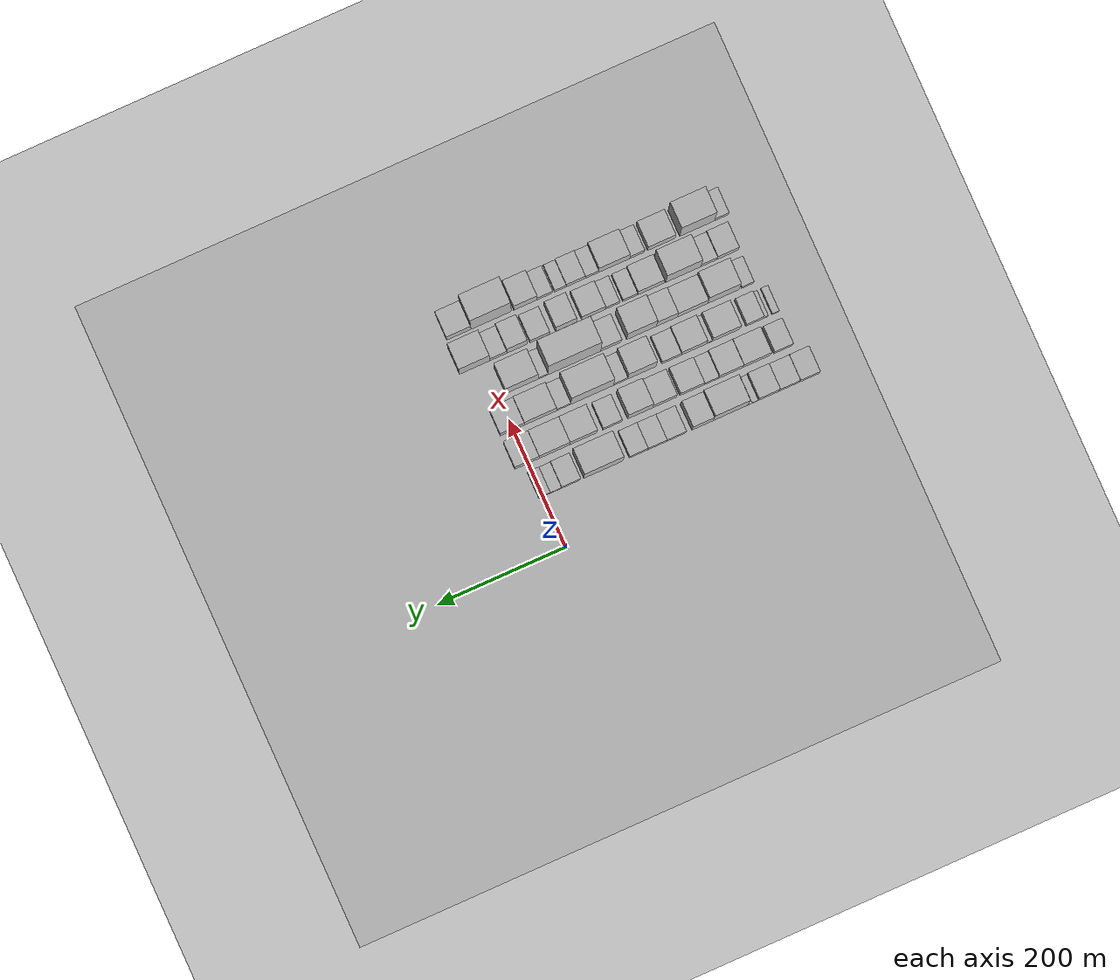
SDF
<sdf version="1.6">
 <world name="default">
  <include><name>ground_plane_1</name><uri>model://HANNAS_ground_plane</uri></include>
  <include>
   <name>ground_plane_2</name>
   <uri>model://HANNAS_ground_plane</uri>
   <pose>100 0 0  0 0 0</pose>
  </include>
  <model name="building_12">
   <static>1</static>
   <pose>100.0000 -415.4937 0 0.000000 0.000000 0.000000</pose>
   <link name="link">
    <pose>0 0 28.50 0 0 0</pose>
    <collision name="collision"><geometry><box><size>40.0000 30.6795 57.0000</size></box></geometry></collision>
    <visual name="visual">
     <cast_shadows>0</cast_shadows>
     <geometry><box><size>40.0000 30.6795 57.0000</size></box></geometry>
     <material>
      <script>
       <uri>model://HANNAS_wall/materials/scripts</uri>
       <uri>model://HANNAS_wall/materials/textures</uri>
       <name>vrc/HANNAS_wall</name>
      </script>
     </material>
    </visual>
   </link>
  </model>
  <model name="building_13">
   <static>1</static>
   <pose>100.0000 -384.3324 0 0.000000 0.000000 0.000000</pose>
   <link name="link">
    <pose>0 0 27.00 0 0 0</pose>
    <collision name="collision"><geometry><box><size>40.0000 31.6431 54.0000</size></box></geometry></collision>
    <visual name="visual">
     <cast_shadows>0</cast_shadows>
     <geometry><box><size>40.0000 31.6431 54.0000</size></box></geometry>
     <material>
      <script>
       <uri>model://HANNAS_wall/materials/scripts</uri>
       <uri>model://HANNAS_wall/materials/textures</uri>
       <name>vrc/HANNAS_wall</name>
      </script>
     </material>
    </visual>
   </link>
  </model>
  <model name="building_14">
   <static>1</static>
   <pose>100.0000 -352.0110 0 0.000000 0.000000 0.000000</pose>
   <link name="link">
    <pose>0 0 31.50 0 0 0</pose>
    <collision name="collision"><geometry><box><size>40.0000 32.9997 63.0000</size></box></geometry></collision>
    <visual name="visual">
     <cast_shadows>0</cast_shadows>
     <geometry><box><size>40.0000 32.9997 63.0000</size></box></geometry>
     <material>
      <script>
       <uri>model://HANNAS_wall/materials/scripts</uri>
       <uri>model://HANNAS_wall/materials/textures</uri>
       <name>vrc/HANNAS_wall</name>
      </script>
     </material>
    </visual>
   </link>
  </model>
  <model name="building_15">
   <static>1</static>
   <pose>100.0000 -330.5286 0 0.000000 0.000000 0.000000</pose>
   <link name="link">
    <pose>0 0 10.50 0 0 0</pose>
    <collision name="collision"><geometry><box><size>40.0000 9.9651 21.0000</size></box></geometry></collision>
    <visual name="visual">
     <cast_shadows>0</cast_shadows>
     <geometry><box><size>40.0000 9.9651 21.0000</size></box></geometry>
     <material>
      <script>
       <uri>model://HANNAS_wall/materials/scripts</uri>
       <uri>model://HANNAS_wall/materials/textures</uri>
       <name>vrc/HANNAS_wall</name>
      </script>
     </material>
    </visual>
   </link>
  </model>
  <model name="building_16">
   <static>1</static>
   <pose>100.0000 -322.3145 0 0.000000 0.000000 0.000000</pose>
   <link name="link">
    <pose>0 0 7.50 0 0 0</pose>
    <collision name="collision"><geometry><box><size>40.0000 6.4632 15.0000</size></box></geometry></collision>
    <visual name="visual">
     <cast_shadows>0</cast_shadows>
     <geometry><box><size>40.0000 6.4632 15.0000</size></box></geometry>
     <material>
      <script>
       <uri>model://HANNAS_wall/materials/scripts</uri>
       <uri>model://HANNAS_wall/materials/textures</uri>
       <name>vrc/HANNAS_wall</name>
      </script>
     </material>
    </visual>
   </link>
  </model>
  <model name="building_17">
   <static>1</static>
   <pose>100.0000 -292.0841 0 0.000000 0.000000 0.000000</pose>
   <link name="link">
    <pose>0 0 75.00 0 0 0</pose>
    <collision name="collision"><geometry><box><size>40.0000 53.9976 150.0000</size></box></geometry></collision>
    <visual name="visual">
     <cast_shadows>0</cast_shadows>
     <geometry><box><size>40.0000 53.9976 150.0000</size></box></geometry>
     <material>
      <script>
       <uri>model://HANNAS_wall/materials/scripts</uri>
       <uri>model://HANNAS_wall/materials/textures</uri>
       <name>vrc/HANNAS_wall</name>
      </script>
     </material>
    </visual>
   </link>
  </model>
  <model name="building_18">
   <static>1</static>
   <pose>100.0000 -248.5190 0 0.000000 0.000000 0.000000</pose>
   <link name="link">
    <pose>0 0 52.50 0 0 0</pose>
    <collision name="collision"><geometry><box><size>40.0000 33.1326 105.0000</size></box></geometry></collision>
    <visual name="visual">
     <cast_shadows>0</cast_shadows>
     <geometry><box><size>40.0000 33.1326 105.0000</size></box></geometry>
     <material>
      <script>
       <uri>model://HANNAS_wall/materials/scripts</uri>
       <uri>model://HANNAS_wall/materials/textures</uri>
       <name>vrc/HANNAS_wall</name>
      </script>
     </material>
    </visual>
   </link>
  </model>
  <model name="building_19">
   <static>1</static>
   <pose>100.0000 -207.8662 0 0.000000 0.000000 0.000000</pose>
   <link name="link">
    <pose>0 0 25.50 0 0 0</pose>
    <collision name="collision"><geometry><box><size>40.0000 30.1730 51.0000</size></box></geometry></collision>
    <visual name="visual">
     <cast_shadows>0</cast_shadows>
     <geometry><box><size>40.0000 30.1730 51.0000</size></box></geometry>
     <material>
      <script>
       <uri>model://HANNAS_wall/materials/scripts</uri>
       <uri>model://HANNAS_wall/materials/textures</uri>
       <name>vrc/HANNAS_wall</name>
      </script>
     </material>
    </visual>
   </link>
  </model>
  <model name="building_20">
   <static>1</static>
   <pose>100.0000 -178.0327 0 0.000000 0.000000 0.000000</pose>
   <link name="link">
    <pose>0 0 27.00 0 0 0</pose>
    <collision name="collision"><geometry><box><size>40.0000 29.4939 54.0000</size></box></geometry></collision>
    <visual name="visual">
     <cast_shadows>0</cast_shadows>
     <geometry><box><size>40.0000 29.4939 54.0000</size></box></geometry>
     <material>
      <script>
       <uri>model://HANNAS_wall/materials/scripts</uri>
       <uri>model://HANNAS_wall/materials/textures</uri>
       <name>vrc/HANNAS_wall</name>
      </script>
     </material>
    </visual>
   </link>
  </model>
  <model name="building_21">
   <static>1</static>
   <pose>100.0000 -148.8522 0 0.000000 0.000000 0.000000</pose>
   <link name="link">
    <pose>0 0 28.50 0 0 0</pose>
    <collision name="collision"><geometry><box><size>40.0000 28.8671 57.0000</size></box></geometry></collision>
    <visual name="visual">
     <cast_shadows>0</cast_shadows>
     <geometry><box><size>40.0000 28.8671 57.0000</size></box></geometry>
     <material>
      <script>
       <uri>model://HANNAS_wall/materials/scripts</uri>
       <uri>model://HANNAS_wall/materials/textures</uri>
       <name>vrc/HANNAS_wall</name>
      </script>
     </material>
    </visual>
   </link>
  </model>
  <model name="building_22">
   <static>1</static>
   <pose>100.0000 -93.9196 0 0.000000 0.000000 0.000000</pose>
   <link name="link">
    <pose>0 0 78.00 0 0 0</pose>
    <collision name="collision"><geometry><box><size>40.0000 60.9980 156.0000</size></box></geometry></collision>
    <visual name="visual">
     <cast_shadows>0</cast_shadows>
     <geometry><box><size>40.0000 60.9980 156.0000</size></box></geometry>
     <material>
      <script>
       <uri>model://HANNAS_wall/materials/scripts</uri>
       <uri>model://HANNAS_wall/materials/textures</uri>
       <name>vrc/HANNAS_wall</name>
      </script>
     </material>
    </visual>
   </link>
  </model>
  <model name="building_23">
   <static>1</static>
   <pose>100.0000 -43.6051 0 0.000000 0.000000 0.000000</pose>
   <link name="link">
    <pose>0 0 25.50 0 0 0</pose>
    <collision name="collision"><geometry><box><size>40.0000 29.6312 51.0000</size></box></geometry></collision>
    <visual name="visual">
     <cast_shadows>0</cast_shadows>
     <geometry><box><size>40.0000 29.6312 51.0000</size></box></geometry>
     <material>
      <script>
       <uri>model://HANNAS_wall/materials/scripts</uri>
       <uri>model://HANNAS_wall/materials/textures</uri>
       <name>vrc/HANNAS_wall</name>
      </script>
     </material>
    </visual>
   </link>
  </model>
  <model name="building_24">
   <static>1</static>
   <pose>100.0000 -19.9299 0 0.000000 0.000000 0.000000</pose>
   <link name="link">
    <pose>0 0 15.00 0 0 0</pose>
    <collision name="collision"><geometry><box><size>40.0000 17.7191 30.0000</size></box></geometry></collision>
    <visual name="visual">
     <cast_shadows>0</cast_shadows>
     <geometry><box><size>40.0000 17.7191 30.0000</size></box></geometry>
     <material>
      <script>
       <uri>model://HANNAS_wall/materials/scripts</uri>
       <uri>model://HANNAS_wall/materials/textures</uri>
       <name>vrc/HANNAS_wall</name>
      </script>
     </material>
    </visual>
   </link>
  </model>
  <model name="building_25">
   <static>1</static>
   <pose>100.0000 -2.0524 0 0.000000 0.000000 0.000000</pose>
   <link name="link">
    <pose>0 0 18.00 0 0 0</pose>
    <collision name="collision"><geometry><box><size>40.0000 18.0360 36.0000</size></box></geometry></collision>
    <visual name="visual">
     <cast_shadows>0</cast_shadows>
     <geometry><box><size>40.0000 18.0360 36.0000</size></box></geometry>
     <material>
      <script>
       <uri>model://HANNAS_wall/materials/scripts</uri>
       <uri>model://HANNAS_wall/materials/textures</uri>
       <name>vrc/HANNAS_wall</name>
      </script>
     </material>
    </visual>
   </link>
  </model>
  <model name="building_62">
   <static>1</static>
   <pose>152.0000 -397.9090 0 0.000000 0.000000 0.000000</pose>
   <link name="link">
    <pose>0 0 25.50 0 0 0</pose>
    <collision name="collision"><geometry><box><size>40.0000 29.2951 51.0000</size></box></geometry></collision>
    <visual name="visual">
     <cast_shadows>0</cast_shadows>
     <geometry><box><size>40.0000 29.2951 51.0000</size></box></geometry>
     <material>
      <script>
       <uri>model://HANNAS_wall/materials/scripts</uri>
       <uri>model://HANNAS_wall/materials/textures</uri>
       <name>vrc/HANNAS_wall</name>
      </script>
     </material>
    </visual>
   </link>
  </model>
  <model name="building_63">
   <static>1</static>
   <pose>152.0000 -356.6444 0 0.000000 0.000000 0.000000</pose>
   <link name="link">
    <pose>0 0 37.50 0 0 0</pose>
    <collision name="collision"><geometry><box><size>40.0000 43.2341 75.0000</size></box></geometry></collision>
    <visual name="visual">
     <cast_shadows>0</cast_shadows>
     <geometry><box><size>40.0000 43.2341 75.0000</size></box></geometry>
     <material>
      <script>
       <uri>model://HANNAS_wall/materials/scripts</uri>
       <uri>model://HANNAS_wall/materials/textures</uri>
       <name>vrc/HANNAS_wall</name>
      </script>
     </material>
    </visual>
   </link>
  </model>
  <model name="building_64">
   <static>1</static>
   <pose>152.0000 -316.1906 0 0.000000 0.000000 0.000000</pose>
   <link name="link">
    <pose>0 0 34.50 0 0 0</pose>
    <collision name="collision"><geometry><box><size>40.0000 37.6734 69.0000</size></box></geometry></collision>
    <visual name="visual">
     <cast_shadows>0</cast_shadows>
     <geometry><box><size>40.0000 37.6734 69.0000</size></box></geometry>
     <material>
      <script>
       <uri>model://HANNAS_wall/materials/scripts</uri>
       <uri>model://HANNAS_wall/materials/textures</uri>
       <name>vrc/HANNAS_wall</name>
      </script>
     </material>
    </visual>
   </link>
  </model>
  <model name="building_65">
   <static>1</static>
   <pose>152.0000 -285.7049 0 0.000000 0.000000 0.000000</pose>
   <link name="link">
    <pose>0 0 22.50 0 0 0</pose>
    <collision name="collision"><geometry><box><size>40.0000 23.2981 45.0000</size></box></geometry></collision>
    <visual name="visual">
     <cast_shadows>0</cast_shadows>
     <geometry><box><size>40.0000 23.2981 45.0000</size></box></geometry>
     <material>
      <script>
       <uri>model://HANNAS_wall/materials/scripts</uri>
       <uri>model://HANNAS_wall/materials/textures</uri>
       <name>vrc/HANNAS_wall</name>
      </script>
     </material>
    </visual>
   </link>
  </model>
  <model name="building_66">
   <static>1</static>
   <pose>152.0000 -255.3257 0 0.000000 0.000000 0.000000</pose>
   <link name="link">
    <pose>0 0 33.00 0 0 0</pose>
    <collision name="collision"><geometry><box><size>40.0000 37.4603 66.0000</size></box></geometry></collision>
    <visual name="visual">
     <cast_shadows>0</cast_shadows>
     <geometry><box><size>40.0000 37.4603 66.0000</size></box></geometry>
     <material>
      <script>
       <uri>model://HANNAS_wall/materials/scripts</uri>
       <uri>model://HANNAS_wall/materials/textures</uri>
       <name>vrc/HANNAS_wall</name>
      </script>
     </material>
    </visual>
   </link>
  </model>
  <model name="building_67">
   <static>1</static>
   <pose>152.0000 -212.8691 0 0.000000 0.000000 0.000000</pose>
   <link name="link">
    <pose>0 0 36.00 0 0 0</pose>
    <collision name="collision"><geometry><box><size>40.0000 37.4528 72.0000</size></box></geometry></collision>
    <visual name="visual">
     <cast_shadows>0</cast_shadows>
     <geometry><box><size>40.0000 37.4528 72.0000</size></box></geometry>
     <material>
      <script>
       <uri>model://HANNAS_wall/materials/scripts</uri>
       <uri>model://HANNAS_wall/materials/textures</uri>
       <name>vrc/HANNAS_wall</name>
      </script>
     </material>
    </visual>
   </link>
  </model>
  <model name="building_68">
   <static>1</static>
   <pose>152.0000 -174.6141 0 0.000000 0.000000 0.000000</pose>
   <link name="link">
    <pose>0 0 60.00 0 0 0</pose>
    <collision name="collision"><geometry><box><size>40.0000 39.0573 120.0000</size></box></geometry></collision>
    <visual name="visual">
     <cast_shadows>0</cast_shadows>
     <geometry><box><size>40.0000 39.0573 120.0000</size></box></geometry>
     <material>
      <script>
       <uri>model://HANNAS_wall/materials/scripts</uri>
       <uri>model://HANNAS_wall/materials/textures</uri>
       <name>vrc/HANNAS_wall</name>
      </script>
     </material>
    </visual>
   </link>
  </model>
  <model name="building_69">
   <static>1</static>
   <pose>152.0000 -131.2801 0 0.000000 0.000000 0.000000</pose>
   <link name="link">
    <pose>0 0 28.50 0 0 0</pose>
    <collision name="collision"><geometry><box><size>40.0000 29.6106 57.0000</size></box></geometry></collision>
    <visual name="visual">
     <cast_shadows>0</cast_shadows>
     <geometry><box><size>40.0000 29.6106 57.0000</size></box></geometry>
     <material>
      <script>
       <uri>model://HANNAS_wall/materials/scripts</uri>
       <uri>model://HANNAS_wall/materials/textures</uri>
       <name>vrc/HANNAS_wall</name>
      </script>
     </material>
    </visual>
   </link>
  </model>
  <model name="building_70">
   <static>1</static>
   <pose>152.0000 -86.2488 0 0.000000 0.000000 0.000000</pose>
   <link name="link">
    <pose>0 0 42.00 0 0 0</pose>
    <collision name="collision"><geometry><box><size>40.0000 42.4521 84.0000</size></box></geometry></collision>
    <visual name="visual">
     <cast_shadows>0</cast_shadows>
     <geometry><box><size>40.0000 42.4521 84.0000</size></box></geometry>
     <material>
      <script>
       <uri>model://HANNAS_wall/materials/scripts</uri>
       <uri>model://HANNAS_wall/materials/textures</uri>
       <name>vrc/HANNAS_wall</name>
      </script>
     </material>
    </visual>
   </link>
  </model>
  <model name="building_71">
   <static>1</static>
   <pose>152.0000 -41.0210 0 0.000000 0.000000 0.000000</pose>
   <link name="link">
    <pose>0 0 42.00 0 0 0</pose>
    <collision name="collision"><geometry><box><size>40.0000 48.0034 84.0000</size></box></geometry></collision>
    <visual name="visual">
     <cast_shadows>0</cast_shadows>
     <geometry><box><size>40.0000 48.0034 84.0000</size></box></geometry>
     <material>
      <script>
       <uri>model://HANNAS_wall/materials/scripts</uri>
       <uri>model://HANNAS_wall/materials/textures</uri>
       <name>vrc/HANNAS_wall</name>
      </script>
     </material>
    </visual>
   </link>
  </model>
  <model name="building_72">
   <static>1</static>
   <pose>152.0000 2.0179 0 0.000000 0.000000 0.000000</pose>
   <link name="link">
    <pose>0 0 37.50 0 0 0</pose>
    <collision name="collision"><geometry><box><size>40.0000 38.0745 75.0000</size></box></geometry></collision>
    <visual name="visual">
     <cast_shadows>0</cast_shadows>
     <geometry><box><size>40.0000 38.0745 75.0000</size></box></geometry>
     <material>
      <script>
       <uri>model://HANNAS_wall/materials/scripts</uri>
       <uri>model://HANNAS_wall/materials/textures</uri>
       <name>vrc/HANNAS_wall</name>
      </script>
     </material>
    </visual>
   </link>
  </model>
  <model name="building_115">
   <static>1</static>
   <pose>204.0000 -409.1559 0 0.000000 0.000000 0.000000</pose>
   <link name="link">
    <pose>0 0 12.00 0 0 0</pose>
    <collision name="collision"><geometry><box><size>40.0000 10.6407 24.0000</size></box></geometry></collision>
    <visual name="visual">
     <cast_shadows>0</cast_shadows>
     <geometry><box><size>40.0000 10.6407 24.0000</size></box></geometry>
     <material>
      <script>
       <uri>model://HANNAS_wall/materials/scripts</uri>
       <uri>model://HANNAS_wall/materials/textures</uri>
       <name>vrc/HANNAS_wall</name>
      </script>
     </material>
    </visual>
   </link>
  </model>
  <model name="building_116">
   <static>1</static>
   <pose>204.0000 -394.1683 0 0.000000 0.000000 0.000000</pose>
   <link name="link">
    <pose>0 0 9.00 0 0 0</pose>
    <collision name="collision"><geometry><box><size>40.0000 7.3345 18.0000</size></box></geometry></collision>
    <visual name="visual">
     <cast_shadows>0</cast_shadows>
     <geometry><box><size>40.0000 7.3345 18.0000</size></box></geometry>
     <material>
      <script>
       <uri>model://HANNAS_wall/materials/scripts</uri>
       <uri>model://HANNAS_wall/materials/textures</uri>
       <name>vrc/HANNAS_wall</name>
      </script>
     </material>
    </visual>
   </link>
  </model>
  <model name="building_117">
   <static>1</static>
   <pose>204.0000 -376.8056 0 0.000000 0.000000 0.000000</pose>
   <link name="link">
    <pose>0 0 25.50 0 0 0</pose>
    <collision name="collision"><geometry><box><size>40.0000 27.3908 51.0000</size></box></geometry></collision>
    <visual name="visual">
     <cast_shadows>0</cast_shadows>
     <geometry><box><size>40.0000 27.3908 51.0000</size></box></geometry>
     <material>
      <script>
       <uri>model://HANNAS_wall/materials/scripts</uri>
       <uri>model://HANNAS_wall/materials/textures</uri>
       <name>vrc/HANNAS_wall</name>
      </script>
     </material>
    </visual>
   </link>
  </model>
  <model name="building_118">
   <static>1</static>
   <pose>204.0000 -332.3905 0 0.000000 0.000000 0.000000</pose>
   <link name="link">
    <pose>0 0 39.00 0 0 0</pose>
    <collision name="collision"><geometry><box><size>40.0000 43.4395 78.0000</size></box></geometry></collision>
    <visual name="visual">
     <cast_shadows>0</cast_shadows>
     <geometry><box><size>40.0000 43.4395 78.0000</size></box></geometry>
     <material>
      <script>
       <uri>model://HANNAS_wall/materials/scripts</uri>
       <uri>model://HANNAS_wall/materials/textures</uri>
       <name>vrc/HANNAS_wall</name>
      </script>
     </material>
    </visual>
   </link>
  </model>
  <model name="building_119">
   <static>1</static>
   <pose>204.0000 -306.2946 0 0.000000 0.000000 0.000000</pose>
   <link name="link">
    <pose>0 0 10.50 0 0 0</pose>
    <collision name="collision"><geometry><box><size>40.0000 8.7524 21.0000</size></box></geometry></collision>
    <visual name="visual">
     <cast_shadows>0</cast_shadows>
     <geometry><box><size>40.0000 8.7524 21.0000</size></box></geometry>
     <material>
      <script>
       <uri>model://HANNAS_wall/materials/scripts</uri>
       <uri>model://HANNAS_wall/materials/textures</uri>
       <name>vrc/HANNAS_wall</name>
      </script>
     </material>
    </visual>
   </link>
  </model>
  <model name="building_120">
   <static>1</static>
   <pose>204.0000 -281.8661 0 0.000000 0.000000 0.000000</pose>
   <link name="link">
    <pose>0 0 39.00 0 0 0</pose>
    <collision name="collision"><geometry><box><size>40.0000 40.1045 78.0000</size></box></geometry></collision>
    <visual name="visual">
     <cast_shadows>0</cast_shadows>
     <geometry><box><size>40.0000 40.1045 78.0000</size></box></geometry>
     <material>
      <script>
       <uri>model://HANNAS_wall/materials/scripts</uri>
       <uri>model://HANNAS_wall/materials/textures</uri>
       <name>vrc/HANNAS_wall</name>
      </script>
     </material>
    </visual>
   </link>
  </model>
  <model name="building_121">
   <static>1</static>
   <pose>204.0000 -246.8113 0 0.000000 0.000000 0.000000</pose>
   <link name="link">
    <pose>0 0 25.50 0 0 0</pose>
    <collision name="collision"><geometry><box><size>40.0000 30.0051 51.0000</size></box></geometry></collision>
    <visual name="visual">
     <cast_shadows>0</cast_shadows>
     <geometry><box><size>40.0000 30.0051 51.0000</size></box></geometry>
     <material>
      <script>
       <uri>model://HANNAS_wall/materials/scripts</uri>
       <uri>model://HANNAS_wall/materials/textures</uri>
       <name>vrc/HANNAS_wall</name>
      </script>
     </material>
    </visual>
   </link>
  </model>
  <model name="building_122">
   <static>1</static>
   <pose>204.0000 -200.6649 0 0.000000 0.000000 0.000000</pose>
   <link name="link">
    <pose>0 0 66.00 0 0 0</pose>
    <collision name="collision"><geometry><box><size>40.0000 44.2879 132.0000</size></box></geometry></collision>
    <visual name="visual">
     <cast_shadows>0</cast_shadows>
     <geometry><box><size>40.0000 44.2879 132.0000</size></box></geometry>
     <material>
      <script>
       <uri>model://HANNAS_wall/materials/scripts</uri>
       <uri>model://HANNAS_wall/materials/textures</uri>
       <name>vrc/HANNAS_wall</name>
      </script>
     </material>
    </visual>
   </link>
  </model>
  <model name="building_123">
   <static>1</static>
   <pose>204.0000 -167.4529 0 0.000000 0.000000 0.000000</pose>
   <link name="link">
    <pose>0 0 21.00 0 0 0</pose>
    <collision name="collision"><geometry><box><size>40.0000 22.1360 42.0000</size></box></geometry></collision>
    <visual name="visual">
     <cast_shadows>0</cast_shadows>
     <geometry><box><size>40.0000 22.1360 42.0000</size></box></geometry>
     <material>
      <script>
       <uri>model://HANNAS_wall/materials/scripts</uri>
       <uri>model://HANNAS_wall/materials/textures</uri>
       <name>vrc/HANNAS_wall</name>
      </script>
     </material>
    </visual>
   </link>
  </model>
  <model name="building_124">
   <static>1</static>
   <pose>204.0000 -123.0507 0 0.000000 0.000000 0.000000</pose>
   <link name="link">
    <pose>0 0 87.00 0 0 0</pose>
    <collision name="collision"><geometry><box><size>40.0000 66.6684 174.0000</size></box></geometry></collision>
    <visual name="visual">
     <cast_shadows>0</cast_shadows>
     <geometry><box><size>40.0000 66.6684 174.0000</size></box></geometry>
     <material>
      <script>
       <uri>model://HANNAS_wall/materials/scripts</uri>
       <uri>model://HANNAS_wall/materials/textures</uri>
       <name>vrc/HANNAS_wall</name>
      </script>
     </material>
    </visual>
   </link>
  </model>
  <model name="building_125">
   <static>1</static>
   <pose>204.0000 -78.4507 0 0.000000 0.000000 0.000000</pose>
   <link name="link">
    <pose>0 0 19.50 0 0 0</pose>
    <collision name="collision"><geometry><box><size>40.0000 22.5318 39.0000</size></box></geometry></collision>
    <visual name="visual">
     <cast_shadows>0</cast_shadows>
     <geometry><box><size>40.0000 22.5318 39.0000</size></box></geometry>
     <material>
      <script>
       <uri>model://HANNAS_wall/materials/scripts</uri>
       <uri>model://HANNAS_wall/materials/textures</uri>
       <name>vrc/HANNAS_wall</name>
      </script>
     </material>
    </visual>
   </link>
  </model>
  <model name="building_126">
   <static>1</static>
   <pose>204.0000 -42.1700 0 0.000000 0.000000 0.000000</pose>
   <link name="link">
    <pose>0 0 43.50 0 0 0</pose>
    <collision name="collision"><geometry><box><size>40.0000 50.0296 87.0000</size></box></geometry></collision>
    <visual name="visual">
     <cast_shadows>0</cast_shadows>
     <geometry><box><size>40.0000 50.0296 87.0000</size></box></geometry>
     <material>
      <script>
       <uri>model://HANNAS_wall/materials/scripts</uri>
       <uri>model://HANNAS_wall/materials/textures</uri>
       <name>vrc/HANNAS_wall</name>
      </script>
     </material>
    </visual>
   </link>
  </model>
  <model name="building_127">
   <static>1</static>
   <pose>204.0000 1.7032 0 0.000000 0.000000 0.000000</pose>
   <link name="link">
    <pose>0 0 34.50 0 0 0</pose>
    <collision name="collision"><geometry><box><size>40.0000 37.7168 69.0000</size></box></geometry></collision>
    <visual name="visual">
     <cast_shadows>0</cast_shadows>
     <geometry><box><size>40.0000 37.7168 69.0000</size></box></geometry>
     <material>
      <script>
       <uri>model://HANNAS_wall/materials/scripts</uri>
       <uri>model://HANNAS_wall/materials/textures</uri>
       <name>vrc/HANNAS_wall</name>
      </script>
     </material>
    </visual>
   </link>
  </model>
  <model name="building_162">
   <static>1</static>
   <pose>256.0000 -388.8770 0 0.000000 0.000000 0.000000</pose>
   <link name="link">
    <pose>0 0 18.00 0 0 0</pose>
    <collision name="collision"><geometry><box><size>40.0000 18.8424 36.0000</size></box></geometry></collision>
    <visual name="visual">
     <cast_shadows>0</cast_shadows>
     <geometry><box><size>40.0000 18.8424 36.0000</size></box></geometry>
     <material>
      <script>
       <uri>model://HANNAS_wall/materials/scripts</uri>
       <uri>model://HANNAS_wall/materials/textures</uri>
       <name>vrc/HANNAS_wall</name>
      </script>
     </material>
    </visual>
   </link>
  </model>
  <model name="building_163">
   <static>1</static>
   <pose>256.0000 -351.0007 0 0.000000 0.000000 0.000000</pose>
   <link name="link">
    <pose>0 0 66.00 0 0 0</pose>
    <collision name="collision"><geometry><box><size>40.0000 48.9103 132.0000</size></box></geometry></collision>
    <visual name="visual">
     <cast_shadows>0</cast_shadows>
     <geometry><box><size>40.0000 48.9103 132.0000</size></box></geometry>
     <material>
      <script>
       <uri>model://HANNAS_wall/materials/scripts</uri>
       <uri>model://HANNAS_wall/materials/textures</uri>
       <name>vrc/HANNAS_wall</name>
      </script>
     </material>
    </visual>
   </link>
  </model>
  <model name="building_164">
   <static>1</static>
   <pose>256.0000 -302.8229 0 0.000000 0.000000 0.000000</pose>
   <link name="link">
    <pose>0 0 42.00 0 0 0</pose>
    <collision name="collision"><geometry><box><size>40.0000 47.4453 84.0000</size></box></geometry></collision>
    <visual name="visual">
     <cast_shadows>0</cast_shadows>
     <geometry><box><size>40.0000 47.4453 84.0000</size></box></geometry>
     <material>
      <script>
       <uri>model://HANNAS_wall/materials/scripts</uri>
       <uri>model://HANNAS_wall/materials/textures</uri>
       <name>vrc/HANNAS_wall</name>
      </script>
     </material>
    </visual>
   </link>
  </model>
  <model name="building_165">
   <static>1</static>
   <pose>256.0000 -262.8055 0 0.000000 0.000000 0.000000</pose>
   <link name="link">
    <pose>0 0 49.50 0 0 0</pose>
    <collision name="collision"><geometry><box><size>40.0000 32.5894 99.0000</size></box></geometry></collision>
    <visual name="visual">
     <cast_shadows>0</cast_shadows>
     <geometry><box><size>40.0000 32.5894 99.0000</size></box></geometry>
     <material>
      <script>
       <uri>model://HANNAS_wall/materials/scripts</uri>
       <uri>model://HANNAS_wall/materials/textures</uri>
       <name>vrc/HANNAS_wall</name>
      </script>
     </material>
    </visual>
   </link>
  </model>
  <model name="building_166">
   <static>1</static>
   <pose>256.0000 -223.2886 0 0.000000 0.000000 0.000000</pose>
   <link name="link">
    <pose>0 0 70.50 0 0 0</pose>
    <collision name="collision"><geometry><box><size>40.0000 46.4445 141.0000</size></box></geometry></collision>
    <visual name="visual">
     <cast_shadows>0</cast_shadows>
     <geometry><box><size>40.0000 46.4445 141.0000</size></box></geometry>
     <material>
      <script>
       <uri>model://HANNAS_wall/materials/scripts</uri>
       <uri>model://HANNAS_wall/materials/textures</uri>
       <name>vrc/HANNAS_wall</name>
      </script>
     </material>
    </visual>
   </link>
  </model>
  <model name="building_167">
   <static>1</static>
   <pose>256.0000 -175.7738 0 0.000000 0.000000 0.000000</pose>
   <link name="link">
    <pose>0 0 31.50 0 0 0</pose>
    <collision name="collision"><geometry><box><size>40.0000 32.5851 63.0000</size></box></geometry></collision>
    <visual name="visual">
     <cast_shadows>0</cast_shadows>
     <geometry><box><size>40.0000 32.5851 63.0000</size></box></geometry>
     <material>
      <script>
       <uri>model://HANNAS_wall/materials/scripts</uri>
       <uri>model://HANNAS_wall/materials/textures</uri>
       <name>vrc/HANNAS_wall</name>
      </script>
     </material>
    </visual>
   </link>
  </model>
  <model name="building_168">
   <static>1</static>
   <pose>256.0000 -118.4840 0 0.000000 0.000000 0.000000</pose>
   <link name="link">
    <pose>0 0 112.50 0 0 0</pose>
    <collision name="collision"><geometry><box><size>40.0000 81.9945 225.0000</size></box></geometry></collision>
    <visual name="visual">
     <cast_shadows>0</cast_shadows>
     <geometry><box><size>40.0000 81.9945 225.0000</size></box></geometry>
     <material>
      <script>
       <uri>model://HANNAS_wall/materials/scripts</uri>
       <uri>model://HANNAS_wall/materials/textures</uri>
       <name>vrc/HANNAS_wall</name>
      </script>
     </material>
    </visual>
   </link>
  </model>
  <model name="building_169">
   <static>1</static>
   <pose>256.0000 -69.5954 0 0.000000 0.000000 0.000000</pose>
   <link name="link">
    <pose>0 0 15.00 0 0 0</pose>
    <collision name="collision"><geometry><box><size>40.0000 15.7825 30.0000</size></box></geometry></collision>
    <visual name="visual">
     <cast_shadows>0</cast_shadows>
     <geometry><box><size>40.0000 15.7825 30.0000</size></box></geometry>
     <material>
      <script>
       <uri>model://HANNAS_wall/materials/scripts</uri>
       <uri>model://HANNAS_wall/materials/textures</uri>
       <name>vrc/HANNAS_wall</name>
      </script>
     </material>
    </visual>
   </link>
  </model>
  <model name="building_170">
   <static>1</static>
   <pose>256.0000 -36.2695 0 0.000000 0.000000 0.000000</pose>
   <link name="link">
    <pose>0 0 64.50 0 0 0</pose>
    <collision name="collision"><geometry><box><size>40.0000 50.8694 129.0000</size></box></geometry></collision>
    <visual name="visual">
     <cast_shadows>0</cast_shadows>
     <geometry><box><size>40.0000 50.8694 129.0000</size></box></geometry>
     <material>
      <script>
       <uri>model://HANNAS_wall/materials/scripts</uri>
       <uri>model://HANNAS_wall/materials/textures</uri>
       <name>vrc/HANNAS_wall</name>
      </script>
     </material>
    </visual>
   </link>
  </model>
  <model name="building_204">
   <static>1</static>
   <pose>308.0000 -381.2557 0 0.000000 0.000000 0.000000</pose>
   <link name="link">
    <pose>0 0 30.00 0 0 0</pose>
    <collision name="collision"><geometry><box><size>40.0000 33.1061 60.0000</size></box></geometry></collision>
    <visual name="visual">
     <cast_shadows>0</cast_shadows>
     <geometry><box><size>40.0000 33.1061 60.0000</size></box></geometry>
     <material>
      <script>
       <uri>model://HANNAS_wall/materials/scripts</uri>
       <uri>model://HANNAS_wall/materials/textures</uri>
       <name>vrc/HANNAS_wall</name>
      </script>
     </material>
    </visual>
   </link>
  </model>
  <model name="building_205">
   <static>1</static>
   <pose>308.0000 -351.8702 0 0.000000 0.000000 0.000000</pose>
   <link name="link">
    <pose>0 0 22.50 0 0 0</pose>
    <collision name="collision"><geometry><box><size>40.0000 25.6650 45.0000</size></box></geometry></collision>
    <visual name="visual">
     <cast_shadows>0</cast_shadows>
     <geometry><box><size>40.0000 25.6650 45.0000</size></box></geometry>
     <material>
      <script>
       <uri>model://HANNAS_wall/materials/scripts</uri>
       <uri>model://HANNAS_wall/materials/textures</uri>
       <name>vrc/HANNAS_wall</name>
      </script>
     </material>
    </visual>
   </link>
  </model>
  <model name="building_206">
   <static>1</static>
   <pose>308.0000 -311.7218 0 0.000000 0.000000 0.000000</pose>
   <link name="link">
    <pose>0 0 70.50 0 0 0</pose>
    <collision name="collision"><geometry><box><size>40.0000 54.6317 141.0000</size></box></geometry></collision>
    <visual name="visual">
     <cast_shadows>0</cast_shadows>
     <geometry><box><size>40.0000 54.6317 141.0000</size></box></geometry>
     <material>
      <script>
       <uri>model://HANNAS_wall/materials/scripts</uri>
       <uri>model://HANNAS_wall/materials/textures</uri>
       <name>vrc/HANNAS_wall</name>
      </script>
     </material>
    </visual>
   </link>
  </model>
  <model name="building_207">
   <static>1</static>
   <pose>308.0000 -260.8564 0 0.000000 0.000000 0.000000</pose>
   <link name="link">
    <pose>0 0 36.00 0 0 0</pose>
    <collision name="collision"><geometry><box><size>40.0000 41.0992 72.0000</size></box></geometry></collision>
    <visual name="visual">
     <cast_shadows>0</cast_shadows>
     <geometry><box><size>40.0000 41.0992 72.0000</size></box></geometry>
     <material>
      <script>
       <uri>model://HANNAS_wall/materials/scripts</uri>
       <uri>model://HANNAS_wall/materials/textures</uri>
       <name>vrc/HANNAS_wall</name>
      </script>
     </material>
    </visual>
   </link>
  </model>
  <model name="building_208">
   <static>1</static>
   <pose>308.0000 -228.7630 0 0.000000 0.000000 0.000000</pose>
   <link name="link">
    <pose>0 0 19.50 0 0 0</pose>
    <collision name="collision"><geometry><box><size>40.0000 23.0876 39.0000</size></box></geometry></collision>
    <visual name="visual">
     <cast_shadows>0</cast_shadows>
     <geometry><box><size>40.0000 23.0876 39.0000</size></box></geometry>
     <material>
      <script>
       <uri>model://HANNAS_wall/materials/scripts</uri>
       <uri>model://HANNAS_wall/materials/textures</uri>
       <name>vrc/HANNAS_wall</name>
      </script>
     </material>
    </visual>
   </link>
  </model>
  <model name="building_209">
   <static>1</static>
   <pose>308.0000 -201.0558 0 0.000000 0.000000 0.000000</pose>
   <link name="link">
    <pose>0 0 19.50 0 0 0</pose>
    <collision name="collision"><geometry><box><size>40.0000 22.3268 39.0000</size></box></geometry></collision>
    <visual name="visual">
     <cast_shadows>0</cast_shadows>
     <geometry><box><size>40.0000 22.3268 39.0000</size></box></geometry>
     <material>
      <script>
       <uri>model://HANNAS_wall/materials/scripts</uri>
       <uri>model://HANNAS_wall/materials/textures</uri>
       <name>vrc/HANNAS_wall</name>
      </script>
     </material>
    </visual>
   </link>
  </model>
  <model name="building_210">
   <static>1</static>
   <pose>308.0000 -171.3919 0 0.000000 0.000000 0.000000</pose>
   <link name="link">
    <pose>0 0 34.50 0 0 0</pose>
    <collision name="collision"><geometry><box><size>40.0000 37.0009 69.0000</size></box></geometry></collision>
    <visual name="visual">
     <cast_shadows>0</cast_shadows>
     <geometry><box><size>40.0000 37.0009 69.0000</size></box></geometry>
     <material>
      <script>
       <uri>model://HANNAS_wall/materials/scripts</uri>
       <uri>model://HANNAS_wall/materials/textures</uri>
       <name>vrc/HANNAS_wall</name>
      </script>
     </material>
    </visual>
   </link>
  </model>
  <model name="building_211">
   <static>1</static>
   <pose>308.0000 -128.5199 0 0.000000 0.000000 0.000000</pose>
   <link name="link">
    <pose>0 0 48.00 0 0 0</pose>
    <collision name="collision"><geometry><box><size>40.0000 32.7432 96.0000</size></box></geometry></collision>
    <visual name="visual">
     <cast_shadows>0</cast_shadows>
     <geometry><box><size>40.0000 32.7432 96.0000</size></box></geometry>
     <material>
      <script>
       <uri>model://HANNAS_wall/materials/scripts</uri>
       <uri>model://HANNAS_wall/materials/textures</uri>
       <name>vrc/HANNAS_wall</name>
      </script>
     </material>
    </visual>
   </link>
  </model>
  <model name="building_212">
   <static>1</static>
   <pose>308.0000 -87.6714 0 0.000000 0.000000 0.000000</pose>
   <link name="link">
    <pose>0 0 27.00 0 0 0</pose>
    <collision name="collision"><geometry><box><size>40.0000 30.9537 54.0000</size></box></geometry></collision>
    <visual name="visual">
     <cast_shadows>0</cast_shadows>
     <geometry><box><size>40.0000 30.9537 54.0000</size></box></geometry>
     <material>
      <script>
       <uri>model://HANNAS_wall/materials/scripts</uri>
       <uri>model://HANNAS_wall/materials/textures</uri>
       <name>vrc/HANNAS_wall</name>
      </script>
     </material>
    </visual>
   </link>
  </model>
  <model name="building_213">
   <static>1</static>
   <pose>308.0000 -52.2334 0 0.000000 0.000000 0.000000</pose>
   <link name="link">
    <pose>0 0 49.50 0 0 0</pose>
    <collision name="collision"><geometry><box><size>40.0000 31.9223 99.0000</size></box></geometry></collision>
    <visual name="visual">
     <cast_shadows>0</cast_shadows>
     <geometry><box><size>40.0000 31.9223 99.0000</size></box></geometry>
     <material>
      <script>
       <uri>model://HANNAS_wall/materials/scripts</uri>
       <uri>model://HANNAS_wall/materials/textures</uri>
       <name>vrc/HANNAS_wall</name>
      </script>
     </material>
    </visual>
   </link>
  </model>
  <model name="building_214">
   <static>1</static>
   <pose>308.0000 -22.9744 0 0.000000 0.000000 0.000000</pose>
   <link name="link">
    <pose>0 0 25.50 0 0 0</pose>
    <collision name="collision"><geometry><box><size>40.0000 26.5957 51.0000</size></box></geometry></collision>
    <visual name="visual">
     <cast_shadows>0</cast_shadows>
     <geometry><box><size>40.0000 26.5957 51.0000</size></box></geometry>
     <material>
      <script>
       <uri>model://HANNAS_wall/materials/scripts</uri>
       <uri>model://HANNAS_wall/materials/textures</uri>
       <name>vrc/HANNAS_wall</name>
      </script>
     </material>
    </visual>
   </link>
  </model>
  <model name="building_215">
   <static>1</static>
   <pose>308.0000 14.1128 0 0.000000 0.000000 0.000000</pose>
   <link name="link">
    <pose>0 0 66.00 0 0 0</pose>
    <collision name="collision"><geometry><box><size>40.0000 47.5788 132.0000</size></box></geometry></collision>
    <visual name="visual">
     <cast_shadows>0</cast_shadows>
     <geometry><box><size>40.0000 47.5788 132.0000</size></box></geometry>
     <material>
      <script>
       <uri>model://HANNAS_wall/materials/scripts</uri>
       <uri>model://HANNAS_wall/materials/textures</uri>
       <name>vrc/HANNAS_wall</name>
      </script>
     </material>
    </visual>
   </link>
  </model>
  <model name="building_250">
   <static>1</static>
   <pose>360.0000 -394.7826 0 0.000000 0.000000 0.000000</pose>
   <link name="link">
    <pose>0 0 19.50 0 0 0</pose>
    <collision name="collision"><geometry><box><size>40.0000 22.1093 39.0000</size></box></geometry></collision>
    <visual name="visual">
     <cast_shadows>0</cast_shadows>
     <geometry><box><size>40.0000 22.1093 39.0000</size></box></geometry>
     <material>
      <script>
       <uri>model://HANNAS_wall/materials/scripts</uri>
       <uri>model://HANNAS_wall/materials/textures</uri>
       <name>vrc/HANNAS_wall</name>
      </script>
     </material>
    </visual>
   </link>
  </model>
  <model name="building_251">
   <static>1</static>
   <pose>360.0000 -356.4790 0 0.000000 0.000000 0.000000</pose>
   <link name="link">
    <pose>0 0 81.00 0 0 0</pose>
    <collision name="collision"><geometry><box><size>40.0000 54.4978 162.0000</size></box></geometry></collision>
    <visual name="visual">
     <cast_shadows>0</cast_shadows>
     <geometry><box><size>40.0000 54.4978 162.0000</size></box></geometry>
     <material>
      <script>
       <uri>model://HANNAS_wall/materials/scripts</uri>
       <uri>model://HANNAS_wall/materials/textures</uri>
       <name>vrc/HANNAS_wall</name>
      </script>
     </material>
    </visual>
   </link>
  </model>
  <model name="building_252">
   <static>1</static>
   <pose>360.0000 -300.7663 0 0.000000 0.000000 0.000000</pose>
   <link name="link">
    <pose>0 0 36.00 0 0 0</pose>
    <collision name="collision"><geometry><box><size>40.0000 42.9277 72.0000</size></box></geometry></collision>
    <visual name="visual">
     <cast_shadows>0</cast_shadows>
     <geometry><box><size>40.0000 42.9277 72.0000</size></box></geometry>
     <material>
      <script>
       <uri>model://HANNAS_wall/materials/scripts</uri>
       <uri>model://HANNAS_wall/materials/textures</uri>
       <name>vrc/HANNAS_wall</name>
      </script>
     </material>
    </visual>
   </link>
  </model>
  <model name="building_253">
   <static>1</static>
   <pose>360.0000 -262.7559 0 0.000000 0.000000 0.000000</pose>
   <link name="link">
    <pose>0 0 21.00 0 0 0</pose>
    <collision name="collision"><geometry><box><size>40.0000 23.0931 42.0000</size></box></geometry></collision>
    <visual name="visual">
     <cast_shadows>0</cast_shadows>
     <geometry><box><size>40.0000 23.0931 42.0000</size></box></geometry>
     <material>
      <script>
       <uri>model://HANNAS_wall/materials/scripts</uri>
       <uri>model://HANNAS_wall/materials/textures</uri>
       <name>vrc/HANNAS_wall</name>
      </script>
     </material>
    </visual>
   </link>
  </model>
  <model name="building_254">
   <static>1</static>
   <pose>360.0000 -227.0404 0 0.000000 0.000000 0.000000</pose>
   <link name="link">
    <pose>0 0 43.50 0 0 0</pose>
    <collision name="collision"><geometry><box><size>40.0000 48.3380 87.0000</size></box></geometry></collision>
    <visual name="visual">
     <cast_shadows>0</cast_shadows>
     <geometry><box><size>40.0000 48.3380 87.0000</size></box></geometry>
     <material>
      <script>
       <uri>model://HANNAS_wall/materials/scripts</uri>
       <uri>model://HANNAS_wall/materials/textures</uri>
       <name>vrc/HANNAS_wall</name>
      </script>
     </material>
    </visual>
   </link>
  </model>
  <model name="building_255">
   <static>1</static>
   <pose>360.0000 -192.3508 0 0.000000 0.000000 0.000000</pose>
   <link name="link">
    <pose>0 0 19.50 0 0 0</pose>
    <collision name="collision"><geometry><box><size>40.0000 21.0411 39.0000</size></box></geometry></collision>
    <visual name="visual">
     <cast_shadows>0</cast_shadows>
     <geometry><box><size>40.0000 21.0411 39.0000</size></box></geometry>
     <material>
      <script>
       <uri>model://HANNAS_wall/materials/scripts</uri>
       <uri>model://HANNAS_wall/materials/textures</uri>
       <name>vrc/HANNAS_wall</name>
      </script>
     </material>
    </visual>
   </link>
  </model>
  <model name="building_256">
   <static>1</static>
   <pose>360.0000 -166.9506 0 0.000000 0.000000 0.000000</pose>
   <link name="link">
    <pose>0 0 25.50 0 0 0</pose>
    <collision name="collision"><geometry><box><size>40.0000 29.7593 51.0000</size></box></geometry></collision>
    <visual name="visual">
     <cast_shadows>0</cast_shadows>
     <geometry><box><size>40.0000 29.7593 51.0000</size></box></geometry>
     <material>
      <script>
       <uri>model://HANNAS_wall/materials/scripts</uri>
       <uri>model://HANNAS_wall/materials/textures</uri>
       <name>vrc/HANNAS_wall</name>
      </script>
     </material>
    </visual>
   </link>
  </model>
  <model name="building_257">
   <static>1</static>
   <pose>360.0000 -143.0041 0 0.000000 0.000000 0.000000</pose>
   <link name="link">
    <pose>0 0 18.00 0 0 0</pose>
    <collision name="collision"><geometry><box><size>40.0000 18.1336 36.0000</size></box></geometry></collision>
    <visual name="visual">
     <cast_shadows>0</cast_shadows>
     <geometry><box><size>40.0000 18.1336 36.0000</size></box></geometry>
     <material>
      <script>
       <uri>model://HANNAS_wall/materials/scripts</uri>
       <uri>model://HANNAS_wall/materials/textures</uri>
       <name>vrc/HANNAS_wall</name>
      </script>
     </material>
    </visual>
   </link>
  </model>
  <model name="building_258">
   <static>1</static>
   <pose>360.0000 -118.7167 0 0.000000 0.000000 0.000000</pose>
   <link name="link">
    <pose>0 0 21.00 0 0 0</pose>
    <collision name="collision"><geometry><box><size>40.0000 24.4412 42.0000</size></box></geometry></collision>
    <visual name="visual">
     <cast_shadows>0</cast_shadows>
     <geometry><box><size>40.0000 24.4412 42.0000</size></box></geometry>
     <material>
      <script>
       <uri>model://HANNAS_wall/materials/scripts</uri>
       <uri>model://HANNAS_wall/materials/textures</uri>
       <name>vrc/HANNAS_wall</name>
      </script>
     </material>
    </visual>
   </link>
  </model>
  <model name="building_259">
   <static>1</static>
   <pose>360.0000 -88.2922 0 0.000000 0.000000 0.000000</pose>
   <link name="link">
    <pose>0 0 46.50 0 0 0</pose>
    <collision name="collision"><geometry><box><size>40.0000 36.4079 93.0000</size></box></geometry></collision>
    <visual name="visual">
     <cast_shadows>0</cast_shadows>
     <geometry><box><size>40.0000 36.4079 93.0000</size></box></geometry>
     <material>
      <script>
       <uri>model://HANNAS_wall/materials/scripts</uri>
       <uri>model://HANNAS_wall/materials/textures</uri>
       <name>vrc/HANNAS_wall</name>
      </script>
     </material>
    </visual>
   </link>
  </model>
  <model name="building_260">
   <static>1</static>
   <pose>360.0000 -34.6768 0 0.000000 0.000000 0.000000</pose>
   <link name="link">
    <pose>0 0 100.50 0 0 0</pose>
    <collision name="collision"><geometry><box><size>40.0000 62.8228 201.0000</size></box></geometry></collision>
    <visual name="visual">
     <cast_shadows>0</cast_shadows>
     <geometry><box><size>40.0000 62.8228 201.0000</size></box></geometry>
     <material>
      <script>
       <uri>model://HANNAS_wall/materials/scripts</uri>
       <uri>model://HANNAS_wall/materials/textures</uri>
       <name>vrc/HANNAS_wall</name>
      </script>
     </material>
    </visual>
   </link>
  </model>
  <model name="building_261">
   <static>1</static>
   <pose>360.0000 15.6604 0 0.000000 0.000000 0.000000</pose>
   <link name="link">
    <pose>0 0 37.50 0 0 0</pose>
    <collision name="collision"><geometry><box><size>40.0000 37.8515 75.0000</size></box></geometry></collision>
    <visual name="visual">
     <cast_shadows>0</cast_shadows>
     <geometry><box><size>40.0000 37.8515 75.0000</size></box></geometry>
     <material>
      <script>
       <uri>model://HANNAS_wall/materials/scripts</uri>
       <uri>model://HANNAS_wall/materials/textures</uri>
       <name>vrc/HANNAS_wall</name>
      </script>
     </material>
    </visual>
   </link>
  </model>
 </world>
</sdf>
